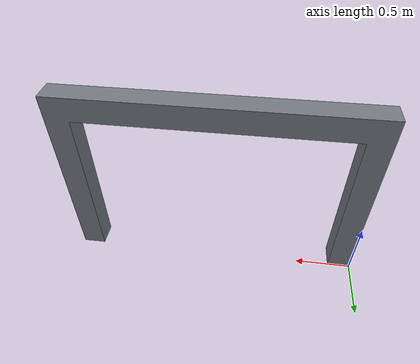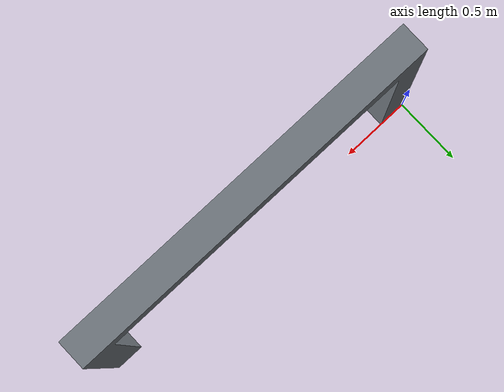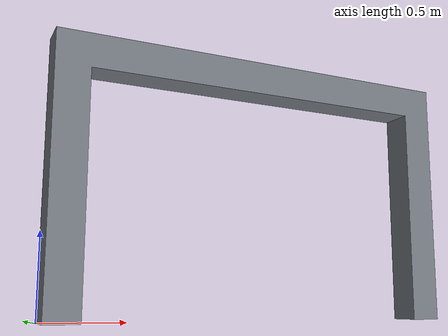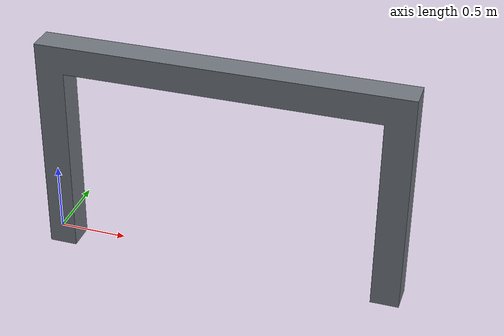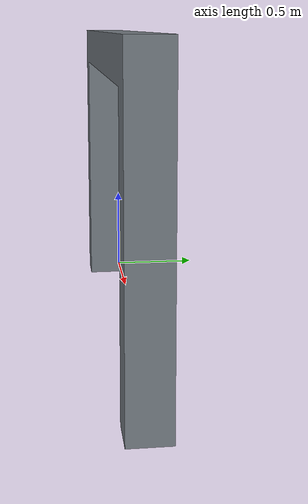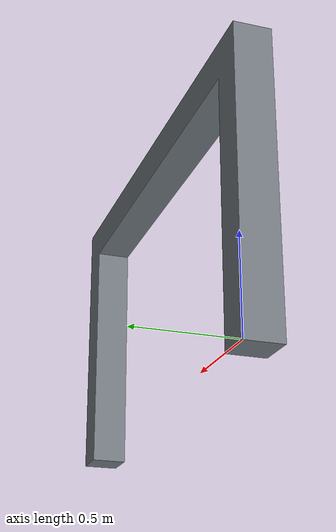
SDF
<sdf version="1.6">
  <model name="robot_arm_beam">
    <static>true</static>
    <link name="new_link">
      <collision name="node0_collision">
        <pose>0.00000 0.00000 1.60000 0.00000 0.00000 0.00000</pose>
        <geometry>
          <mesh>
            <uri>model://robot_arm_beam/meshes/Body.dae</uri>
            <scale>1.00000 1.00000 1.00000</scale>
          </mesh>
        </geometry>
      </collision>
      <inertial>
        <pose>1.30000 -0.10000 1.08519 0.00000 0.00000 0.00000</pose>
        <mass>1000.00000</mass>
        <inertia>
          <ixx>206.20473</ixx>
          <ixy>0.00000</ixy>
          <ixz>0.00000</ixz>
          <iyy>894.54412</iyy>
          <iyz>0.00002</iyz>
          <izz>693.04412</izz>
        </inertia>
      </inertial>
      <visual name="node0">
        <pose>0.00000 0.00000 1.60000 0.00000 0.00000 0.00000</pose>
        <geometry>
          <mesh>
            <uri>model://robot_arm_beam/meshes/Body.dae</uri>
            <scale>1.00000 1.00000 1.00000</scale>
          </mesh>
        </geometry>
      </visual>
    </link>
  </model>
</sdf>
